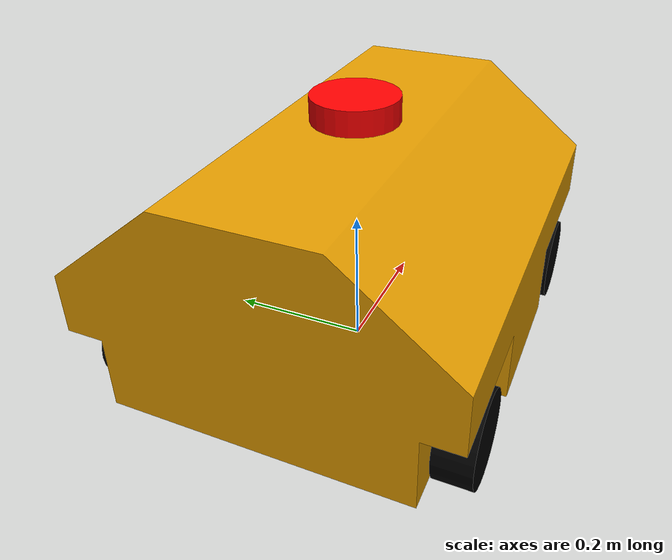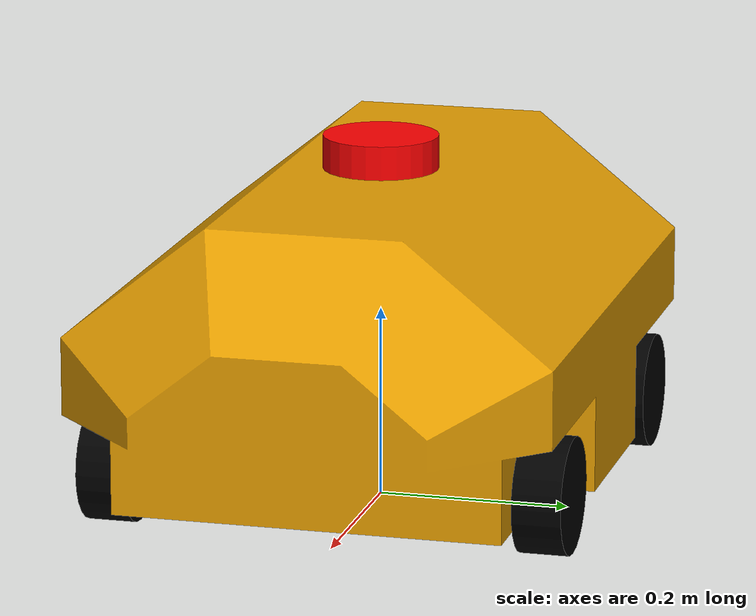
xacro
<?xml version ="2.0"?>
<robot xmlns:xacro="http://www.ros.org/wiki/xacro" name="bilbot">

    <xacro:property name="chassis_lenght" value="0.5"/>
    <xacro:property name="chassis_width" value="0.1"/>
    <xacro:property name="chassis_height" value="0.35"/>
    <xacro:property name="wheel_radius" value="0.06"/>
    <xacro:property name="wheel_width" value="0.05"/>
    <xacro:property name="wheel_to_base_y" value="0.225"/>
    <xacro:property name="wheel_to_base_x" value="0.2"/>
    <xacro:property name="wheel_to_base_z" value="0.075"/>

    <xacro:include filename="$(find bilbot_description)/urdf/xacro/macro_roue.xacro" />
    <xacro:include filename="$(find bilbot_description)/urdf/xacro/inertia.xacro" />

    <material name="Red">
        <color rgba="255 0.0 0.0 1.0"/>
    </material>

    <material name="Black">
        <color rgba="0.0 0.0 0.0 1.0"/>
    </material>

    <link name="base_link">
        <visual>
            <geometry>
                <mesh filename="package://bilbot_description/urdf/3d_files/chassis.dae" scale="0.001 0.001 0.001"/>
            </geometry>
            <origin xyz="0.4 0.25 0.05" rpy="${pi/2} 0.0 ${-pi/2}"/>

        </visual>
        <collision>
            <geometry>
                <mesh filename="package://bilbot_description/urdf/3d_files/chassis.dae" scale="0.001 0.001 0.001"/>
            </geometry>
            <origin xyz="0.4 0.25 0.05" rpy="${pi/2} 0.0 ${-pi/2}"/>
        </collision>
    </link>

    <link name="inertial_link">
        <xacro:box_inertial density="0.5" l="0.5" w="0.5" h="0.5"/>
    </link>

    <joint name="inertial_joint" type="fixed">
        <parent link="base_link"/>
        <child link="inertial_link"/>
    </joint>

    <xacro:wheel_macro side="front_right">
        <cylinder radius="${wheel_radius}" length="${wheel_width}" />
    </xacro:wheel_macro>

    <xacro:wheel_macro side="front_left">
        <cylinder radius="${wheel_radius}" length="${wheel_width}" />
    </xacro:wheel_macro>

    <xacro:wheel_macro side="rear_right">
        <cylinder radius="${wheel_radius}" length="${wheel_width}" />
    </xacro:wheel_macro>

    <xacro:wheel_macro side="rear_left">
        <cylinder radius="${wheel_radius}" length="${wheel_width}" />
    </xacro:wheel_macro>

    <link name="imu_link" />
    <joint name="imu_joint" type="fixed">
        <parent link="base_link"/>
        <child link="imu_link"/>
    </joint>

    <link name="camera" />
    <joint name="camera_joint" type="fixed">
        <parent link="base_link"/>
        <child link="camera"/>
        <origin xyz="${chassis_lenght+0.01} 0.0 0.5"/>
    </joint>

    <link name="lidar_link" >
	<visual>
            <geometry>
                <cylinder radius="0.06" length="0.07" />
            </geometry>
            <origin rpy="0 0.0 0.0"/>
            <material name="Red"/>
        </visual>
    </link>
    <joint name="lidar_joint" type="fixed">
        <parent link="base_link"/>
        <child link="lidar_link"/>
        <origin xyz="0.0 0.0 ${chassis_height}"/>
    </joint>

</robot>

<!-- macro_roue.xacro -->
<robot xmlns:xacro="http://www.ros.org/wiki/xacro" name="bilbot">

    <xacro:macro name="wheel_joint_origin" params="side">
        <xacro:if value="${side == 'front_left'}">
            <origin xyz="${wheel_to_base_x} ${wheel_to_base_y} ${wheel_to_base_z}"/>
        </xacro:if>
        <xacro:if value="${side == 'front_right'}">
            <origin xyz="${wheel_to_base_x} ${-wheel_to_base_y} ${wheel_to_base_z}"/>
        </xacro:if>
        <xacro:if value="${side == 'rear_left'}">
            <origin xyz="${-wheel_to_base_x} ${wheel_to_base_y} ${wheel_to_base_z}"/>
        </xacro:if>
        <xacro:if value="${side == 'rear_right'}">
            <origin xyz="${-wheel_to_base_x} ${-wheel_to_base_y} ${wheel_to_base_z}"/>
        </xacro:if>
    </xacro:macro>

    <xacro:macro name="wheel_macro" params="side *shape">
    <link name="${side}_wheel">
        <visual>
            <geometry>
                <xacro:insert_block name="shape" />
            </geometry>
            <origin rpy="${pi/2} 0.0 0.0"/>
            <material name="Black"/>
        </visual>
        <collision>
            <geometry>
                <xacro:insert_block name="shape" />
            </geometry>
            <origin rpy="${pi/2} 0.0 0.0"/>
            <material name="Black"/>
        </collision>
        <xacro:cylinder_inertial density="7.8" r="${wheel_radius}" h="${wheel_width}"/>
    </link>

    <joint name="${side}_wheel_joint" type="continuous">
        <parent link="base_link"/>
        <child link="${side}_wheel"/>
        <xacro:wheel_joint_origin side="${side}"/>
        <axis xyz="0.0 1.0 0.0"/>
    </joint>

    </xacro:macro>

</robot>

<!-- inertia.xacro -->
<robot xmlns:xacro="http://www.ros.org/wiki/xacro" name="bilbot">

<xacro:macro name="box_inertial" params="density l w h">
    <xacro:property name="mass" value="${density*l*w*h*1000}"/> <!-- calcule de l'inertie d'une box (pour le chassis) -->
    <inertial>
        <mass value="${mass}"/>
        <inertia ixx="${mass*(w*w+h*h)/12}"
		 ixy = "0" ixz = "0"
                 iyy="${mass*(l*l+h*h)/12}"
   		 iyz = "0"
                 izz="${mass*(l*l+h*h)/12}"/>
    </inertial>
</xacro:macro>

<xacro:macro name="cylinder_inertial" params="density r h">
    <xacro:property name="mass" value="${density * 1000 * pi * r*r * h}"/> <!-- density in unit less must be converted in kg/m3 -->
    <inertial>
        <mass value="${mass}"/>
        <inertia ixx="${mass/12*(3*r*r + h*h)}"
                 ixy="0.0"
                 ixz="0.0"
                 iyy="${mass/12*(3*r*r + h*h)}"
                 iyz="0.0"
                 izz="${mass*r*r/2}"/>
    </inertial>
</xacro:macro>

</robot>
